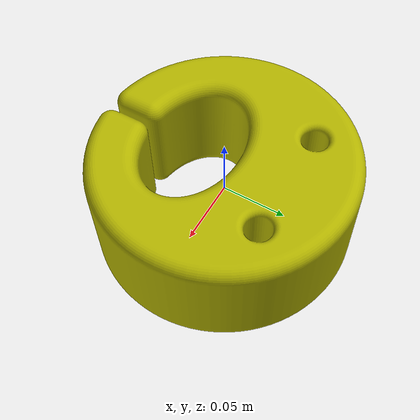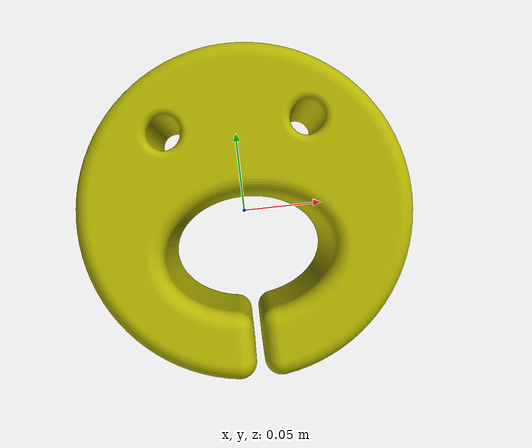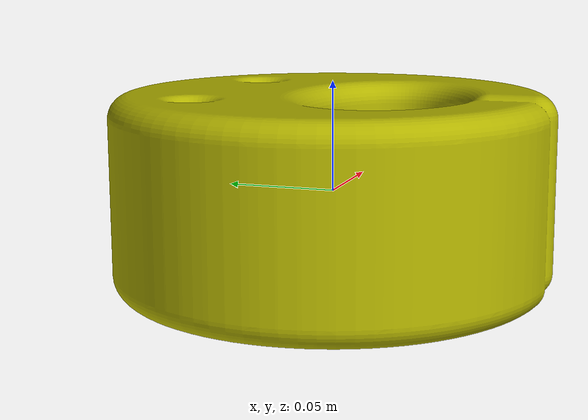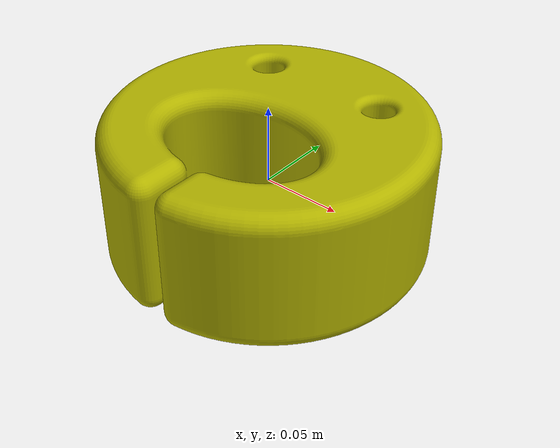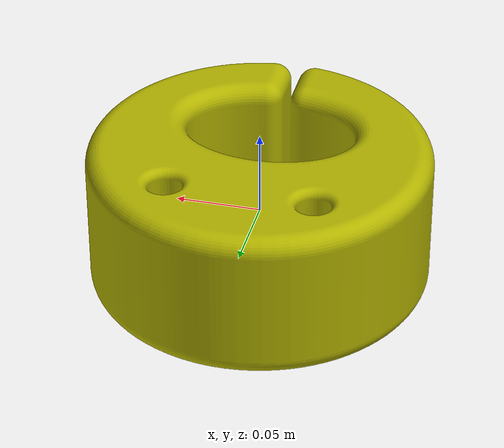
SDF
<?xml version="1.0"?>
<sdf version="1.7" xmlns:drake="drake.mit.edu">
  <model name="floatie">
    <link name="floatie">
      <pose>0 0 0 0 0 0</pose>
      <inertial>
        <pose>0 0 0 0 0 0</pose>
        <mass>0.159</mass>
        <inertia>
          <ixx> 0.000101</ixx>
          <ixy>-0.000001</ixy>
          <ixz>-0.000004</ixz>
          <iyy> 0.000105</iyy>
          <iyz> 0.000007</iyz>
          <izz> 0.000107</izz>
        </inertia>
      </inertial>
      <visual name="floatie">
        <pose>0 0 0 0 0 0</pose>
        <geometry>
          <mesh>
            <uri>floatie_full.obj</uri>
            <scale>0.001 0.001 0.001</scale>
          </mesh>
        </geometry>
	    <material>
          <diffuse>0.7 0.7 0 1.0</diffuse>
        </material>
      </visual>
      <collision name="collision">
        <pose>0 0 0 0 0 0</pose>
        <geometry>
          <mesh>
            <uri>floatie_full.vtk</uri>
            <scale>0.001 0.001 0.001</scale>
          </mesh>
        </geometry>
        <drake:proximity_properties>
          <drake:compliant_hydroelastic/>
          <drake:hydroelastic_modulus>5.0e4</drake:hydroelastic_modulus>
          <!-- Resolution hint is no-op for mesh. It's here in case you want
               to change it to something else (capsule, cylinder, ellipsoid, sphere). -->
          <drake:mesh_resolution_hint>0.005</drake:mesh_resolution_hint>
          <drake:hunt_crossley_dissipation> 10 </drake:hunt_crossley_dissipation>
          <!-- Both mu_dynamic and mu_static are used in Continuous system.
            Only mu_dynamic is used in Discrete system.  -->
          <drake:mu_dynamic>1.0</drake:mu_dynamic>
          <drake:mu_static>1.0</drake:mu_static>
        </drake:proximity_properties>
      </collision>
    </link>
    <frame name="origin">
      <pose relative_to="floatie">0 0 0 0 0 0</pose>
    </frame>
    <frame name="flush_bottom_center__z_up">
      <pose relative_to="floatie">0 0 0 0 0 0</pose>
    </frame>
  </model>
</sdf>
